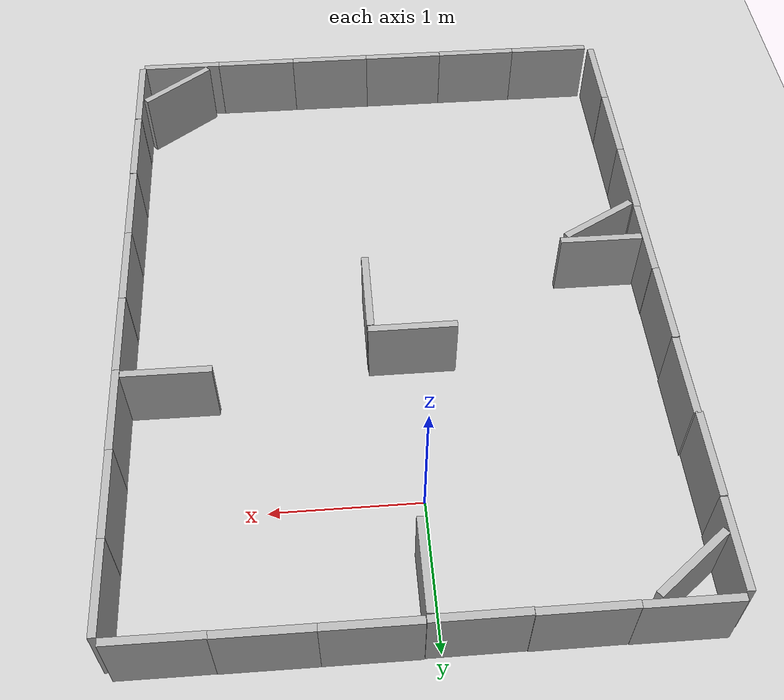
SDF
<?xml version="1.0"?>
<sdf version='1.8'>
  <world name='default'>
    <physics type="ode">
      <real_time_update_rate>1000.0</real_time_update_rate>
      <max_step_size>0.001</max_step_size>
      <real_time_factor>1</real_time_factor>
      <ode>
        <solver>
          <type>quick</type>
          <iters>150</iters>
          <precon_iters>0</precon_iters>
          <sor>1.400000</sor>
          <use_dynamic_moi_rescaling>1</use_dynamic_moi_rescaling>
        </solver>
        <constraints>
          <cfm>0.00001</cfm>
          <erp>0.2</erp>
          <contact_max_correcting_vel>2000.000000</contact_max_correcting_vel>
          <contact_surface_layer>0.01000</contact_surface_layer>
        </constraints>
      </ode>
    </physics>
    <plugin
      filename="gz-sim-physics-system"
      name="gz::sim::systems::Physics">
    </plugin>
    <plugin
      filename="gz-sim-user-commands-system"
      name="gz::sim::systems::UserCommands">
    </plugin>
    <plugin
      filename="gz-sim-scene-broadcaster-system"
      name="gz::sim::systems::SceneBroadcaster">
    </plugin>
    <plugin
      filename="gz-sim-sensors-system"
      name="gz::sim::systems::Sensors">
      <render_engine>ogre2</render_engine>
    </plugin>
    <plugin
      filename="gz-sim-imu-system"
      name="gz::sim::systems::Imu">
    </plugin>
    <plugin
      filename="gz-sim-particle-emitter-system"
      name="gz::sim::systems::ParticleEmitter">
    </plugin>

    <gravity>0 0 -9.8000000000000007</gravity>
    <magnetic_field>5.5644999999999998e-06 2.2875799999999999e-05 -4.2388400000000002e-05</magnetic_field>
    <atmosphere type='adiabatic'/>
    <scene>
      <ambient>0.400000006 0.400000006 0.400000006 1</ambient>
      <background>0.699999988 0.699999988 0.699999988 1</background>
      <shadows>true</shadows>
    </scene>
    <model name='ground_plane'>
      <static>true</static>
      <link name='link'>
        <collision name='collision'>
          <geometry>
            <plane>
              <normal>0 0 1</normal>
              <size>100 100</size>
            </plane>
          </geometry>
          <surface>
            <friction>
              <ode/>
            </friction>
            <bounce/>
            <contact/>
          </surface>
        </collision>
        <visual name='visual'>
          <geometry>
            <plane>
              <normal>0 0 1</normal>
              <size>100 100</size>
            </plane>
          </geometry>
          <material>
            <ambient>0.800000012 0.800000012 0.800000012 1</ambient>
            <diffuse>0.800000012 0.800000012 0.800000012 1</diffuse>
            <specular>0.800000012 0.800000012 0.800000012 1</specular>
          </material>
        </visual>
        <pose>0 0 0 0 0 0</pose>
        <inertial>
          <pose>0 0 0 0 0 0</pose>
          <mass>1</mass>
          <inertia>
            <ixx>1</ixx>
            <ixy>0</ixy>
            <ixz>0</ixz>
            <iyy>1</iyy>
            <iyz>0</iyz>
            <izz>1</izz>
          </inertia>
        </inertial>
        <enable_wind>false</enable_wind>
      </link>
      <pose>0 0 0 0 0 0</pose>
      <self_collide>false</self_collide>
    </model>
    <model name='box'>
      <pose>-1.724210 0.677779 0.26292604207992554 0 0 0</pose>
      <link name='box_link'>
        <inertial>
          <inertia>
            <ixx>0.16666</ixx>
            <ixy>0</ixy>
            <ixz>0</ixz>
            <iyy>0.16666</iyy>
            <iyz>0</iyz>
            <izz>0.16666</izz>
          </inertia>
          <mass>1</mass>
          <pose>0 0 0 0 0 0</pose>
        </inertial>
        <collision name='box_collision'>
          <geometry>
            <box>
              <size>0.050000000000000003 0.55 0.5</size>
            </box>
          </geometry>
          <surface>
            <friction>
              <ode/>
            </friction>
            <bounce/>
            <contact/>
          </surface>
        </collision>
        <visual name='box_visual'>
          <geometry>
            <box>
              <size>0.050000000000000003 0.59999999999999998 0.5</size>
            </box>
          </geometry>
          <material>
            <ambient>0.300000012 0.300000012 0.300000012 1</ambient>
            <diffuse>0.699999988 0.699999988 0.699999988 1</diffuse>
            <specular>1 1 1 1</specular>
          </material>
        </visual>
        <pose>0 0 0 0 0 0</pose>
        <enable_wind>false</enable_wind>
      </link>
      <static>true</static>
      <self_collide>false</self_collide>
    </model>
    <model name='box_1'>
      <pose>-1.730000 0.070000 0.26000000000000001 0 0 0</pose>
      <link name='box_link'>
        <inertial>
          <inertia>
            <ixx>0.16666</ixx>
            <ixy>0</ixy>
            <ixz>0</ixz>
            <iyy>0.16666</iyy>
            <iyz>0</iyz>
            <izz>0.16666</izz>
          </inertia>
          <mass>1</mass>
          <pose>0 0 0 0 0 0</pose>
        </inertial>
        <collision name='box_collision'>
          <geometry>
            <box>
              <size>0.050000000000000003 0.55 0.5</size>
            </box>
          </geometry>
          <surface>
            <friction>
              <ode/>
            </friction>
            <bounce/>
            <contact/>
          </surface>
        </collision>
        <visual name='box_visual'>
          <geometry>
            <box>
              <size>0.050000000000000003 0.59999999999999998 0.5</size>
            </box>
          </geometry>
          <material>
            <ambient>0.300000012 0.300000012 0.300000012 1</ambient>
            <diffuse>0.699999988 0.699999988 0.699999988 1</diffuse>
            <specular>1 1 1 1</specular>
          </material>
        </visual>
        <pose>0 0 0 0 0 0</pose>
        <enable_wind>false</enable_wind>
      </link>
      <static>true</static>
      <self_collide>false</self_collide>
    </model>
    <model name='box_2'>
      <pose>-1.720000 -0.520000 0.26000000000000001 0 0 0</pose>
      <link name='box_link'>
        <inertial>
          <inertia>
            <ixx>0.16666</ixx>
            <ixy>0</ixy>
            <ixz>0</ixz>
            <iyy>0.16666</iyy>
            <iyz>0</iyz>
            <izz>0.16666</izz>
          </inertia>
          <mass>1</mass>
          <pose>0 0 0 0 0 0</pose>
        </inertial>
        <collision name='box_collision'>
          <geometry>
            <box>
              <size>0.050000000000000003 0.55 0.5</size>
            </box>
          </geometry>
          <surface>
            <friction>
              <ode/>
            </friction>
            <bounce/>
            <contact/>
          </surface>
        </collision>
        <visual name='box_visual'>
          <geometry>
            <box>
              <size>0.050000000000000003 0.59999999999999998 0.5</size>
            </box>
          </geometry>
          <material>
            <ambient>0.300000012 0.300000012 0.300000012 1</ambient>
            <diffuse>0.699999988 0.699999988 0.699999988 1</diffuse>
            <specular>1 1 1 1</specular>
          </material>
        </visual>
        <pose>0 0 0 0 0 0</pose>
        <enable_wind>false</enable_wind>
      </link>
      <static>true</static>
      <self_collide>false</self_collide>
    </model>
    <model name='box_3'>
      <pose>-1.722620 -1.113900 0.26708531379699707 0 0 0</pose>
      <link name='box_link'>
        <inertial>
          <inertia>
            <ixx>0.16666</ixx>
            <ixy>0</ixy>
            <ixz>0</ixz>
            <iyy>0.16666</iyy>
            <iyz>0</iyz>
            <izz>0.16666</izz>
          </inertia>
          <mass>1</mass>
          <pose>0 0 0 0 0 0</pose>
        </inertial>
        <collision name='box_collision'>
          <geometry>
            <box>
              <size>0.050000000000000003 0.55 0.5</size>
            </box>
          </geometry>
          <surface>
            <friction>
              <ode/>
            </friction>
            <bounce/>
            <contact/>
          </surface>
        </collision>
        <visual name='box_visual'>
          <geometry>
            <box>
              <size>0.050000000000000003 0.59999999999999998 0.5</size>
            </box>
          </geometry>
          <material>
            <ambient>0.300000012 0.300000012 0.300000012 1</ambient>
            <diffuse>0.699999988 0.699999988 0.699999988 1</diffuse>
            <specular>1 1 1 1</specular>
          </material>
        </visual>
        <pose>0 0 0 0 0 0</pose>
        <enable_wind>false</enable_wind>
      </link>
      <static>true</static>
      <self_collide>false</self_collide>
    </model>
    <model name='box_4'>
      <pose>-1.720580 -1.711580 0.26702764630317688 0 0 0</pose>
      <link name='box_link'>
        <inertial>
          <inertia>
            <ixx>0.16666</ixx>
            <ixy>0</ixy>
            <ixz>0</ixz>
            <iyy>0.16666</iyy>
            <iyz>0</iyz>
            <izz>0.16666</izz>
          </inertia>
          <mass>1</mass>
          <pose>0 0 0 0 0 0</pose>
        </inertial>
        <collision name='box_collision'>
          <geometry>
            <box>
              <size>0.050000000000000003 0.55 0.5</size>
            </box>
          </geometry>
          <surface>
            <friction>
              <ode/>
            </friction>
            <bounce/>
            <contact/>
          </surface>
        </collision>
        <visual name='box_visual'>
          <geometry>
            <box>
              <size>0.050000000000000003 0.59999999999999998 0.5</size>
            </box>
          </geometry>
          <material>
            <ambient>0.300000012 0.300000012 0.300000012 1</ambient>
            <diffuse>0.699999988 0.699999988 0.699999988 1</diffuse>
            <specular>1 1 1 1</specular>
          </material>
        </visual>
        <pose>0 0 0 0 0 0</pose>
        <enable_wind>false</enable_wind>
      </link>
      <static>true</static>
      <self_collide>false</self_collide>
    </model>
    <model name='box_5'>
      <pose>-1.723420 -2.311430 0.26691371202468872 0 0 0</pose>
      <link name='box_link'>
        <inertial>
          <inertia>
            <ixx>0.16666</ixx>
            <ixy>0</ixy>
            <ixz>0</ixz>
            <iyy>0.16666</iyy>
            <iyz>0</iyz>
            <izz>0.16666</izz>
          </inertia>
          <mass>1</mass>
          <pose>0 0 0 0 0 0</pose>
        </inertial>
        <collision name='box_collision'>
          <geometry>
            <box>
              <size>0.050000000000000003 0.55 0.5</size>
            </box>
          </geometry>
          <surface>
            <friction>
              <ode/>
            </friction>
            <bounce/>
            <contact/>
          </surface>
        </collision>
        <visual name='box_visual'>
          <geometry>
            <box>
              <size>0.050000000000000003 0.59999999999999998 0.5</size>
            </box>
          </geometry>
          <material>
            <ambient>0.300000012 0.300000012 0.300000012 1</ambient>
            <diffuse>0.699999988 0.699999988 0.699999988 1</diffuse>
            <specular>1 1 1 1</specular>
          </material>
        </visual>
        <pose>0 0 0 0 0 0</pose>
        <enable_wind>false</enable_wind>
      </link>
      <static>true</static>
      <self_collide>false</self_collide>
    </model>
    <model name='box_6'>
      <pose>-1.723380 -2.910150 0.26712024211883545 0 0 0</pose>
      <link name='box_link'>
        <inertial>
          <inertia>
            <ixx>0.16666</ixx>
            <ixy>0</ixy>
            <ixz>0</ixz>
            <iyy>0.16666</iyy>
            <iyz>0</iyz>
            <izz>0.16666</izz>
          </inertia>
          <mass>1</mass>
          <pose>0 0 0 0 0 0</pose>
        </inertial>
        <collision name='box_collision'>
          <geometry>
            <box>
              <size>0.050000000000000003 0.55 0.5</size>
            </box>
          </geometry>
          <surface>
            <friction>
              <ode/>
            </friction>
            <bounce/>
            <contact/>
          </surface>
        </collision>
        <visual name='box_visual'>
          <geometry>
            <box>
              <size>0.050000000000000003 0.59999999999999998 0.5</size>
            </box>
          </geometry>
          <material>
            <ambient>0.300000012 0.300000012 0.300000012 1</ambient>
            <diffuse>0.699999988 0.699999988 0.699999988 1</diffuse>
            <specular>1 1 1 1</specular>
          </material>
        </visual>
        <pose>0 0 0 0 0 0</pose>
        <enable_wind>false</enable_wind>
      </link>
      <static>true</static>
      <self_collide>false</self_collide>
    </model>
    <model name='box_7'>
      <pose>-1.722150 -3.503610 0.26729947328567505 0 0 0</pose>
      <link name='box_link'>
        <inertial>
          <inertia>
            <ixx>0.16666</ixx>
            <ixy>0</ixy>
            <ixz>0</ixz>
            <iyy>0.16666</iyy>
            <iyz>0</iyz>
            <izz>0.16666</izz>
          </inertia>
          <mass>1</mass>
          <pose>0 0 0 0 0 0</pose>
        </inertial>
        <collision name='box_collision'>
          <geometry>
            <box>
              <size>0.050000000000000003 0.55 0.5</size>
            </box>
          </geometry>
          <surface>
            <friction>
              <ode/>
            </friction>
            <bounce/>
            <contact/>
          </surface>
        </collision>
        <visual name='box_visual'>
          <geometry>
            <box>
              <size>0.050000000000000003 0.59999999999999998 0.5</size>
            </box>
          </geometry>
          <material>
            <ambient>0.300000012 0.300000012 0.300000012 1</ambient>
            <diffuse>0.699999988 0.699999988 0.699999988 1</diffuse>
            <specular>1 1 1 1</specular>
          </material>
        </visual>
        <pose>0 0 0 0 0 0</pose>
        <enable_wind>false</enable_wind>
      </link>
      <static>true</static>
      <self_collide>false</self_collide>
    </model>
    <model name='box_8'>
      <pose>-1.397500 1.006640 0.25750440359115601 0 0 1.5658000872875657</pose>
      <link name='box_link'>
        <inertial>
          <inertia>
            <ixx>0.16666</ixx>
            <ixy>0</ixy>
            <ixz>0</ixz>
            <iyy>0.16666</iyy>
            <iyz>0</iyz>
            <izz>0.16666</izz>
          </inertia>
          <mass>1</mass>
          <pose>0 0 0 0 0 0</pose>
        </inertial>
        <collision name='box_collision'>
          <geometry>
            <box>
              <size>0.050000000000000003 0.55 0.5</size>
            </box>
          </geometry>
          <surface>
            <friction>
              <ode/>
            </friction>
            <bounce/>
            <contact/>
          </surface>
        </collision>
        <visual name='box_visual'>
          <geometry>
            <box>
              <size>0.050000000000000003 0.59999999999999998 0.5</size>
            </box>
          </geometry>
          <material>
            <ambient>0.300000012 0.300000012 0.300000012 1</ambient>
            <diffuse>0.699999988 0.699999988 0.699999988 1</diffuse>
            <specular>1 1 1 1</specular>
          </material>
        </visual>
        <pose>0 0 0 0 0 0</pose>
        <enable_wind>false</enable_wind>
      </link>
      <static>true</static>
      <self_collide>false</self_collide>
    </model>
    <model name='box_8_1'>
      <pose>-0.800898 1.002950 0.26086625456809998 0 0 1.56841005300998</pose>
      <link name='box_link'>
        <inertial>
          <inertia>
            <ixx>0.16666</ixx>
            <ixy>0</ixy>
            <ixz>0</ixz>
            <iyy>0.16666</iyy>
            <iyz>0</iyz>
            <izz>0.16666</izz>
          </inertia>
          <mass>1</mass>
          <pose>0 0 0 0 0 0</pose>
        </inertial>
        <collision name='box_collision'>
          <geometry>
            <box>
              <size>0.050000000000000003 0.55 0.5</size>
            </box>
          </geometry>
          <surface>
            <friction>
              <ode/>
            </friction>
            <bounce/>
            <contact/>
          </surface>
        </collision>
        <visual name='box_visual'>
          <geometry>
            <box>
              <size>0.050000000000000003 0.59999999999999998 0.5</size>
            </box>
          </geometry>
          <material>
            <ambient>0.300000012 0.300000012 0.300000012 1</ambient>
            <diffuse>0.699999988 0.699999988 0.699999988 1</diffuse>
            <specular>1 1 1 1</specular>
          </material>
        </visual>
        <pose>0 0 0 0 0 0</pose>
        <enable_wind>false</enable_wind>
      </link>
      <static>true</static>
      <self_collide>false</self_collide>
    </model>
    <model name='box_8_2'>
      <pose>-0.200025 0.998429 0.2626970112323761 0 0 1.5700000841906609</pose>
      <link name='box_link'>
        <inertial>
          <inertia>
            <ixx>0.16666</ixx>
            <ixy>0</ixy>
            <ixz>0</ixz>
            <iyy>0.16666</iyy>
            <iyz>0</iyz>
            <izz>0.16666</izz>
          </inertia>
          <mass>1</mass>
          <pose>0 0 0 0 0 0</pose>
        </inertial>
        <collision name='box_collision'>
          <geometry>
            <box>
              <size>0.050000000000000003 0.55 0.5</size>
            </box>
          </geometry>
          <surface>
            <friction>
              <ode/>
            </friction>
            <bounce/>
            <contact/>
          </surface>
        </collision>
        <visual name='box_visual'>
          <geometry>
            <box>
              <size>0.050000000000000003 0.59999999999999998 0.5</size>
            </box>
          </geometry>
          <material>
            <ambient>0.300000012 0.300000012 0.300000012 1</ambient>
            <diffuse>0.699999988 0.699999988 0.699999988 1</diffuse>
            <specular>1 1 1 1</specular>
          </material>
        </visual>
        <pose>0 0 0 0 0 0</pose>
        <enable_wind>false</enable_wind>
      </link>
      <static>true</static>
      <self_collide>false</self_collide>
    </model>
    <model name='box_8_3'>
      <pose>0.402227 0.999103 0.25750398635864258 0 0 1.5658000872875657</pose>
      <link name='box_link'>
        <inertial>
          <inertia>
            <ixx>0.16666</ixx>
            <ixy>0</ixy>
            <ixz>0</ixz>
            <iyy>0.16666</iyy>
            <iyz>0</iyz>
            <izz>0.16666</izz>
          </inertia>
          <mass>1</mass>
          <pose>0 0 0 0 0 0</pose>
        </inertial>
        <collision name='box_collision'>
          <geometry>
            <box>
              <size>0.050000000000000003 0.55 0.5</size>
            </box>
          </geometry>
          <surface>
            <friction>
              <ode/>
            </friction>
            <bounce/>
            <contact/>
          </surface>
        </collision>
        <visual name='box_visual'>
          <geometry>
            <box>
              <size>0.050000000000000003 0.59999999999999998 0.5</size>
            </box>
          </geometry>
          <material>
            <ambient>0.300000012 0.300000012 0.300000012 1</ambient>
            <diffuse>0.699999988 0.699999988 0.699999988 1</diffuse>
            <specular>1 1 1 1</specular>
          </material>
        </visual>
        <pose>0 0 0 0 0 0</pose>
        <enable_wind>false</enable_wind>
      </link>
      <static>true</static>
      <self_collide>false</self_collide>
    </model>
    <model name='box_8_4'>
      <pose>1.001963 0.996505 0.25750398635864258 0 0 1.5658000872875657</pose>
      <link name='box_link'>
        <inertial>
          <inertia>
            <ixx>0.16666</ixx>
            <ixy>0</ixy>
            <ixz>0</ixz>
            <iyy>0.16666</iyy>
            <iyz>0</iyz>
            <izz>0.16666</izz>
          </inertia>
          <mass>1</mass>
          <pose>0 0 0 0 0 0</pose>
        </inertial>
        <collision name='box_collision'>
          <geometry>
            <box>
              <size>0.050000000000000003 0.55 0.5</size>
            </box>
          </geometry>
          <surface>
            <friction>
              <ode/>
            </friction>
            <bounce/>
            <contact/>
          </surface>
        </collision>
        <visual name='box_visual'>
          <geometry>
            <box>
              <size>0.050000000000000003 0.59999999999999998 0.5</size>
            </box>
          </geometry>
          <material>
            <ambient>0.300000012 0.300000012 0.300000012 1</ambient>
            <diffuse>0.699999988 0.699999988 0.699999988 1</diffuse>
            <specular>1 1 1 1</specular>
          </material>
        </visual>
        <pose>0 0 0 0 0 0</pose>
        <enable_wind>false</enable_wind>
      </link>
      <static>true</static>
      <self_collide>false</self_collide>
    </model>
    <model name='box_8_5'>
      <pose>1.600076 0.991379 0.25750398635864258 0 0 1.5658000872875657</pose>
      <link name='box_link'>
        <inertial>
          <inertia>
            <ixx>0.16666</ixx>
            <ixy>0</ixy>
            <ixz>0</ixz>
            <iyy>0.16666</iyy>
            <iyz>0</iyz>
            <izz>0.16666</izz>
          </inertia>
          <mass>1</mass>
          <pose>0 0 0 0 0 0</pose>
        </inertial>
        <collision name='box_collision'>
          <geometry>
            <box>
              <size>0.050000000000000003 0.55 0.5</size>
            </box>
          </geometry>
          <surface>
            <friction>
              <ode/>
            </friction>
            <bounce/>
            <contact/>
          </surface>
        </collision>
        <visual name='box_visual'>
          <geometry>
            <box>
              <size>0.050000000000000003 0.59999999999999998 0.5</size>
            </box>
          </geometry>
          <material>
            <ambient>0.300000012 0.300000012 0.300000012 1</ambient>
            <diffuse>0.699999988 0.699999988 0.699999988 1</diffuse>
            <specular>1 1 1 1</specular>
          </material>
        </visual>
        <pose>0 0 0 0 0 0</pose>
        <enable_wind>false</enable_wind>
      </link>
      <static>true</static>
      <self_collide>false</self_collide>
    </model>
    <model name='box_9'>
      <pose>1.926253 0.665529 0.26292601227760315 0 0 0</pose>
      <link name='box_link'>
        <inertial>
          <inertia>
            <ixx>0.16666</ixx>
            <ixy>0</ixy>
            <ixz>0</ixz>
            <iyy>0.16666</iyy>
            <iyz>0</iyz>
            <izz>0.16666</izz>
          </inertia>
          <mass>1</mass>
          <pose>0 0 0 0 0 0</pose>
        </inertial>
        <collision name='box_collision'>
          <geometry>
            <box>
              <size>0.050000000000000003 0.55 0.5</size>
            </box>
          </geometry>
          <surface>
            <friction>
              <ode/>
            </friction>
            <bounce/>
            <contact/>
          </surface>
        </collision>
        <visual name='box_visual'>
          <geometry>
            <box>
              <size>0.050000000000000003 0.59999999999999998 0.5</size>
            </box>
          </geometry>
          <material>
            <ambient>0.300000012 0.300000012 0.300000012 1</ambient>
            <diffuse>0.699999988 0.699999988 0.699999988 1</diffuse>
            <specular>1 1 1 1</specular>
          </material>
        </visual>
        <pose>0 0 0 0 0 0</pose>
        <enable_wind>false</enable_wind>
      </link>
      <static>true</static>
      <self_collide>false</self_collide>
    </model>
    <model name='box_10'>
      <pose>1.925703 0.065196 0.26292601227760315 0 0 0</pose>
      <link name='box_link'>
        <inertial>
          <inertia>
            <ixx>0.16666</ixx>
            <ixy>0</ixy>
            <ixz>0</ixz>
            <iyy>0.16666</iyy>
            <iyz>0</iyz>
            <izz>0.16666</izz>
          </inertia>
          <mass>1</mass>
          <pose>0 0 0 0 0 0</pose>
        </inertial>
        <collision name='box_collision'>
          <geometry>
            <box>
              <size>0.050000000000000003 0.55 0.5</size>
            </box>
          </geometry>
          <surface>
            <friction>
              <ode/>
            </friction>
            <bounce/>
            <contact/>
          </surface>
        </collision>
        <visual name='box_visual'>
          <geometry>
            <box>
              <size>0.050000000000000003 0.59999999999999998 0.5</size>
            </box>
          </geometry>
          <material>
            <ambient>0.300000012 0.300000012 0.300000012 1</ambient>
            <diffuse>0.699999988 0.699999988 0.699999988 1</diffuse>
            <specular>1 1 1 1</specular>
          </material>
        </visual>
        <pose>0 0 0 0 0 0</pose>
        <enable_wind>false</enable_wind>
      </link>
      <static>true</static>
      <self_collide>false</self_collide>
    </model>
    <model name='box_11'>
      <pose>1.927593 -0.535027 0.26292601227760315 0 0 0</pose>
      <link name='box_link'>
        <inertial>
          <inertia>
            <ixx>0.16666</ixx>
            <ixy>0</ixy>
            <ixz>0</ixz>
            <iyy>0.16666</iyy>
            <iyz>0</iyz>
            <izz>0.16666</izz>
          </inertia>
          <mass>1</mass>
          <pose>0 0 0 0 0 0</pose>
        </inertial>
        <collision name='box_collision'>
          <geometry>
            <box>
              <size>0.050000000000000003 0.55 0.5</size>
            </box>
          </geometry>
          <surface>
            <friction>
              <ode/>
            </friction>
            <bounce/>
            <contact/>
          </surface>
        </collision>
        <visual name='box_visual'>
          <geometry>
            <box>
              <size>0.050000000000000003 0.59999999999999998 0.5</size>
            </box>
          </geometry>
          <material>
            <ambient>0.300000012 0.300000012 0.300000012 1</ambient>
            <diffuse>0.699999988 0.699999988 0.699999988 1</diffuse>
            <specular>1 1 1 1</specular>
          </material>
        </visual>
        <pose>0 0 0 0 0 0</pose>
        <enable_wind>false</enable_wind>
      </link>
      <static>true</static>
      <self_collide>false</self_collide>
    </model>
    <model name='box_12'>
      <pose>1.928115 -1.135219 0.26292601227760315 0 0 0</pose>
      <link name='box_link'>
        <inertial>
          <inertia>
            <ixx>0.16666</ixx>
            <ixy>0</ixy>
            <ixz>0</ixz>
            <iyy>0.16666</iyy>
            <iyz>0</iyz>
            <izz>0.16666</izz>
          </inertia>
          <mass>1</mass>
          <pose>0 0 0 0 0 0</pose>
        </inertial>
        <collision name='box_collision'>
          <geometry>
            <box>
              <size>0.050000000000000003 0.55 0.5</size>
            </box>
          </geometry>
          <surface>
            <friction>
              <ode/>
            </friction>
            <bounce/>
            <contact/>
          </surface>
        </collision>
        <visual name='box_visual'>
          <geometry>
            <box>
              <size>0.050000000000000003 0.59999999999999998 0.5</size>
            </box>
          </geometry>
          <material>
            <ambient>0.300000012 0.300000012 0.300000012 1</ambient>
            <diffuse>0.699999988 0.699999988 0.699999988 1</diffuse>
            <specular>1 1 1 1</specular>
          </material>
        </visual>
        <pose>0 0 0 0 0 0</pose>
        <enable_wind>false</enable_wind>
      </link>
      <static>true</static>
      <self_collide>false</self_collide>
    </model>
    <model name='box_13'>
      <pose>1.926795 -1.737173 0.26292601227760315 0 0 0</pose>
      <link name='box_link'>
        <inertial>
          <inertia>
            <ixx>0.16666</ixx>
            <ixy>0</ixy>
            <ixz>0</ixz>
            <iyy>0.16666</iyy>
            <iyz>0</iyz>
            <izz>0.16666</izz>
          </inertia>
          <mass>1</mass>
          <pose>0 0 0 0 0 0</pose>
        </inertial>
        <collision name='box_collision'>
          <geometry>
            <box>
              <size>0.050000000000000003 0.55 0.5</size>
            </box>
          </geometry>
          <surface>
            <friction>
              <ode/>
            </friction>
            <bounce/>
            <contact/>
          </surface>
        </collision>
        <visual name='box_visual'>
          <geometry>
            <box>
              <size>0.050000000000000003 0.59999999999999998 0.5</size>
            </box>
          </geometry>
          <material>
            <ambient>0.300000012 0.300000012 0.300000012 1</ambient>
            <diffuse>0.699999988 0.699999988 0.699999988 1</diffuse>
            <specular>1 1 1 1</specular>
          </material>
        </visual>
        <pose>0 0 0 0 0 0</pose>
        <enable_wind>false</enable_wind>
      </link>
      <static>true</static>
      <self_collide>false</self_collide>
    </model>
    <model name='box_14'>
      <pose>1.926761 -2.336629 0.26292601227760315 0 0 0</pose>
      <link name='box_link'>
        <inertial>
          <inertia>
            <ixx>0.16666</ixx>
            <ixy>0</ixy>
            <ixz>0</ixz>
            <iyy>0.16666</iyy>
            <iyz>0</iyz>
            <izz>0.16666</izz>
          </inertia>
          <mass>1</mass>
          <pose>0 0 0 0 0 0</pose>
        </inertial>
        <collision name='box_collision'>
          <geometry>
            <box>
              <size>0.050000000000000003 0.55 0.5</size>
            </box>
          </geometry>
          <surface>
            <friction>
              <ode/>
            </friction>
            <bounce/>
            <contact/>
          </surface>
        </collision>
        <visual name='box_visual'>
          <geometry>
            <box>
              <size>0.050000000000000003 0.59999999999999998 0.5</size>
            </box>
          </geometry>
          <material>
            <ambient>0.300000012 0.300000012 0.300000012 1</ambient>
            <diffuse>0.699999988 0.699999988 0.699999988 1</diffuse>
            <specular>1 1 1 1</specular>
          </material>
        </visual>
        <pose>0 0 0 0 0 0</pose>
        <enable_wind>false</enable_wind>
      </link>
      <static>true</static>
      <self_collide>false</self_collide>
    </model>
    <model name='box_15'>
      <pose>1.928001 -2.938907 0.26292601227760315 0 0 0</pose>
      <link name='box_link'>
        <inertial>
          <inertia>
            <ixx>0.16666</ixx>
            <ixy>0</ixy>
            <ixz>0</ixz>
            <iyy>0.16666</iyy>
            <iyz>0</iyz>
            <izz>0.16666</izz>
          </inertia>
          <mass>1</mass>
          <pose>0 0 0 0 0 0</pose>
        </inertial>
        <collision name='box_collision'>
          <geometry>
            <box>
              <size>0.050000000000000003 0.55 0.5</size>
            </box>
          </geometry>
          <surface>
            <friction>
              <ode/>
            </friction>
            <bounce/>
            <contact/>
          </surface>
        </collision>
        <visual name='box_visual'>
          <geometry>
            <box>
              <size>0.050000000000000003 0.59999999999999998 0.5</size>
            </box>
          </geometry>
          <material>
            <ambient>0.300000012 0.300000012 0.300000012 1</ambient>
            <diffuse>0.699999988 0.699999988 0.699999988 1</diffuse>
            <specular>1 1 1 1</specular>
          </material>
        </visual>
        <pose>0 0 0 0 0 0</pose>
        <enable_wind>false</enable_wind>
      </link>
      <static>true</static>
      <self_collide>false</self_collide>
    </model>
    <model name='box_16'>
      <pose>1.927476 -3.542195 0.26292601227760315 0 0 0</pose>
      <link name='box_link'>
        <inertial>
          <inertia>
            <ixx>0.16666</ixx>
            <ixy>0</ixy>
            <ixz>0</ixz>
            <iyy>0.16666</iyy>
            <iyz>0</iyz>
            <izz>0.16666</izz>
          </inertia>
          <mass>1</mass>
          <pose>0 0 0 0 0 0</pose>
        </inertial>
        <collision name='box_collision'>
          <geometry>
            <box>
              <size>0.050000000000000003 0.55 0.5</size>
            </box>
          </geometry>
          <surface>
            <friction>
              <ode/>
            </friction>
            <bounce/>
            <contact/>
          </surface>
        </collision>
        <visual name='box_visual'>
          <geometry>
            <box>
              <size>0.050000000000000003 0.59999999999999998 0.5</size>
            </box>
          </geometry>
          <material>
            <ambient>0.300000012 0.300000012 0.300000012 1</ambient>
            <diffuse>0.699999988 0.699999988 0.699999988 1</diffuse>
            <specular>1 1 1 1</specular>
          </material>
        </visual>
        <pose>0 0 0 0 0 0</pose>
        <enable_wind>false</enable_wind>
      </link>
      <static>true</static>
      <self_collide>false</self_collide>
    </model>
    <model name='box_8_5_1'>
      <pose>1.617098 -3.865566 0.25750398635864258 0 0 1.5658000872875657</pose>
      <link name='box_link'>
        <inertial>
          <inertia>
            <ixx>0.16666</ixx>
            <ixy>0</ixy>
            <ixz>0</ixz>
            <iyy>0.16666</iyy>
            <iyz>0</iyz>
            <izz>0.16666</izz>
          </inertia>
          <mass>1</mass>
          <pose>0 0 0 0 0 0</pose>
        </inertial>
        <collision name='box_collision'>
          <geometry>
            <box>
              <size>0.050000000000000003 0.55 0.5</size>
            </box>
          </geometry>
          <surface>
            <friction>
              <ode/>
            </friction>
            <bounce/>
            <contact/>
          </surface>
        </collision>
        <visual name='box_visual'>
          <geometry>
            <box>
              <size>0.050000000000000003 0.59999999999999998 0.5</size>
            </box>
          </geometry>
          <material>
            <ambient>0.300000012 0.300000012 0.300000012 1</ambient>
            <diffuse>0.699999988 0.699999988 0.699999988 1</diffuse>
            <specular>1 1 1 1</specular>
          </material>
        </visual>
        <pose>0 0 0 0 0 0</pose>
        <enable_wind>false</enable_wind>
      </link>
      <static>true</static>
      <self_collide>false</self_collide>
    </model>
    <model name='box_8_5_2'>
      <pose>1.018338 -3.862349 0.25750398635864258 0 0 1.5658000872875657</pose>
      <link name='box_link'>
        <inertial>
          <inertia>
            <ixx>0.16666</ixx>
            <ixy>0</ixy>
            <ixz>0</ixz>
            <iyy>0.16666</iyy>
            <iyz>0</iyz>
            <izz>0.16666</izz>
          </inertia>
          <mass>1</mass>
          <pose>0 0 0 0 0 0</pose>
        </inertial>
        <collision name='box_collision'>
          <geometry>
            <box>
              <size>0.050000000000000003 0.55 0.5</size>
            </box>
          </geometry>
          <surface>
            <friction>
              <ode/>
            </friction>
            <bounce/>
            <contact/>
          </surface>
        </collision>
        <visual name='box_visual'>
          <geometry>
            <box>
              <size>0.050000000000000003 0.59999999999999998 0.5</size>
            </box>
          </geometry>
          <material>
            <ambient>0.300000012 0.300000012 0.300000012 1</ambient>
            <diffuse>0.699999988 0.699999988 0.699999988 1</diffuse>
            <specular>1 1 1 1</specular>
          </material>
        </visual>
        <pose>0 0 0 0 0 0</pose>
        <enable_wind>false</enable_wind>
      </link>
      <static>true</static>
      <self_collide>false</self_collide>
    </model>
    <model name='box_8_5_3'>
      <pose>0.419076 -3.860021 0.25750398635864258 0 0 1.5658000872875657</pose>
      <link name='box_link'>
        <inertial>
          <inertia>
            <ixx>0.16666</ixx>
            <ixy>0</ixy>
            <ixz>0</ixz>
            <iyy>0.16666</iyy>
            <iyz>0</iyz>
            <izz>0.16666</izz>
          </inertia>
          <mass>1</mass>
          <pose>0 0 0 0 0 0</pose>
        </inertial>
        <collision name='box_collision'>
          <geometry>
            <box>
              <size>0.050000000000000003 0.55 0.5</size>
            </box>
          </geometry>
          <surface>
            <friction>
              <ode/>
            </friction>
            <bounce/>
            <contact/>
          </surface>
        </collision>
        <visual name='box_visual'>
          <geometry>
            <box>
              <size>0.050000000000000003 0.59999999999999998 0.5</size>
            </box>
          </geometry>
          <material>
            <ambient>0.300000012 0.300000012 0.300000012 1</ambient>
            <diffuse>0.699999988 0.699999988 0.699999988 1</diffuse>
            <specular>1 1 1 1</specular>
          </material>
        </visual>
        <pose>0 0 0 0 0 0</pose>
        <enable_wind>false</enable_wind>
      </link>
      <static>true</static>
      <self_collide>false</self_collide>
    </model>
    <model name='box_8_5_4'>
      <pose>-0.179832 -3.856848 0.25750398635864258 0 0 1.5658000872875657</pose>
      <link name='box_link'>
        <inertial>
          <inertia>
            <ixx>0.16666</ixx>
            <ixy>0</ixy>
            <ixz>0</ixz>
            <iyy>0.16666</iyy>
            <iyz>0</iyz>
            <izz>0.16666</izz>
          </inertia>
          <mass>1</mass>
          <pose>0 0 0 0 0 0</pose>
        </inertial>
        <collision name='box_collision'>
          <geometry>
            <box>
              <size>0.050000000000000003 0.55 0.5</size>
            </box>
          </geometry>
          <surface>
            <friction>
              <ode/>
            </friction>
            <bounce/>
            <contact/>
          </surface>
        </collision>
        <visual name='box_visual'>
          <geometry>
            <box>
              <size>0.050000000000000003 0.59999999999999998 0.5</size>
            </box>
          </geometry>
          <material>
            <ambient>0.300000012 0.300000012 0.300000012 1</ambient>
            <diffuse>0.699999988 0.699999988 0.699999988 1</diffuse>
            <specular>1 1 1 1</specular>
          </material>
        </visual>
        <pose>0 0 0 0 0 0</pose>
        <enable_wind>false</enable_wind>
      </link>
      <static>true</static>
      <self_collide>false</self_collide>
    </model>
    <model name='box_8_5_5'>
      <pose>-0.780121 -3.853889 0.25750398635864258 0 0 1.5658000872875657</pose>
      <link name='box_link'>
        <inertial>
          <inertia>
            <ixx>0.16666</ixx>
            <ixy>0</ixy>
            <ixz>0</ixz>
            <iyy>0.16666</iyy>
            <iyz>0</iyz>
            <izz>0.16666</izz>
          </inertia>
          <mass>1</mass>
          <pose>0 0 0 0 0 0</pose>
        </inertial>
        <collision name='box_collision'>
          <geometry>
            <box>
              <size>0.050000000000000003 0.55 0.5</size>
            </box>
          </geometry>
          <surface>
            <friction>
              <ode/>
            </friction>
            <bounce/>
            <contact/>
          </surface>
        </collision>
        <visual name='box_visual'>
          <geometry>
            <box>
              <size>0.050000000000000003 0.59999999999999998 0.5</size>
            </box>
          </geometry>
          <material>
            <ambient>0.300000012 0.300000012 0.300000012 1</ambient>
            <diffuse>0.699999988 0.699999988 0.699999988 1</diffuse>
            <specular>1 1 1 1</specular>
          </material>
        </visual>
        <pose>0 0 0 0 0 0</pose>
        <enable_wind>false</enable_wind>
      </link>
      <static>true</static>
      <self_collide>false</self_collide>
    </model>
    <model name='box_8_5_6'>
      <pose>-1.379843 -3.849801 0.25750398635864258 0 0 1.5658000872875657</pose>
      <link name='box_link'>
        <inertial>
          <inertia>
            <ixx>0.16666</ixx>
            <ixy>0</ixy>
            <ixz>0</ixz>
            <iyy>0.16666</iyy>
            <iyz>0</iyz>
            <izz>0.16666</izz>
          </inertia>
          <mass>1</mass>
          <pose>0 0 0 0 0 0</pose>
        </inertial>
        <collision name='box_collision'>
          <geometry>
            <box>
              <size>0.050000000000000003 0.55 0.5</size>
            </box>
          </geometry>
          <surface>
            <friction>
              <ode/>
            </friction>
            <bounce/>
            <contact/>
          </surface>
        </collision>
        <visual name='box_visual'>
          <geometry>
            <box>
              <size>0.050000000000000003 0.59999999999999998 0.5</size>
            </box>
          </geometry>
          <material>
            <ambient>0.300000012 0.300000012 0.300000012 1</ambient>
            <diffuse>0.699999988 0.699999988 0.699999988 1</diffuse>
            <specular>1 1 1 1</specular>
          </material>
        </visual>
        <pose>0 0 0 0 0 0</pose>
        <enable_wind>false</enable_wind>
      </link>
      <static>true</static>
      <self_collide>false</self_collide>
    </model>
    <model name='box_8_5_7'>
      <pose>-1.417992 -1.729548 0.25750398635864258 0 0 1.5658000872875657</pose>
      <link name='box_link'>
        <inertial>
          <inertia>
            <ixx>0.16666</ixx>
            <ixy>0</ixy>
            <ixz>0</ixz>
            <iyy>0.16666</iyy>
            <iyz>0</iyz>
            <izz>0.16666</izz>
          </inertia>
          <mass>1</mass>
          <pose>0 0 0 0 0 0</pose>
        </inertial>
        <collision name='box_collision'>
          <geometry>
            <box>
              <size>0.050000000000000003 0.55 0.5</size>
            </box>
          </geometry>
          <surface>
            <friction>
              <ode/>
            </friction>
            <bounce/>
            <contact/>
          </surface>
        </collision>
        <visual name='box_visual'>
          <geometry>
            <box>
              <size>0.050000000000000003 0.59999999999999998 0.5</size>
            </box>
          </geometry>
          <material>
            <ambient>0.300000012 0.300000012 0.300000012 1</ambient>
            <diffuse>0.699999988 0.699999988 0.699999988 1</diffuse>
            <specular>1 1 1 1</specular>
          </material>
        </visual>
        <pose>0 0 0 0 0 0</pose>
        <enable_wind>false</enable_wind>
      </link>
      <static>true</static>
      <self_collide>false</self_collide>
    </model>
    <model name='box_8_5_9'>
      <pose>1.610688 -0.803015 0.25750398635864258 0 0 1.5658000872875657</pose>
      <link name='box_link'>
        <inertial>
          <inertia>
            <ixx>0.16666</ixx>
            <ixy>0</ixy>
            <ixz>0</ixz>
            <iyy>0.16666</iyy>
            <iyz>0</iyz>
            <izz>0.16666</izz>
          </inertia>
          <mass>1</mass>
          <pose>0 0 0 0 0 0</pose>
        </inertial>
        <collision name='box_collision'>
          <geometry>
            <box>
              <size>0.050000000000000003 0.55 0.5</size>
            </box>
          </geometry>
          <surface>
            <friction>
              <ode/>
            </friction>
            <bounce/>
            <contact/>
          </surface>
        </collision>
        <visual name='box_visual'>
          <geometry>
            <box>
              <size>0.050000000000000003 0.59999999999999998 0.5</size>
            </box>
          </geometry>
          <material>
            <ambient>0.300000012 0.300000012 0.300000012 1</ambient>
            <diffuse>0.699999988 0.699999988 0.699999988 1</diffuse>
            <specular>1 1 1 1</specular>
          </material>
        </visual>
        <pose>0 0 0 0 0 0</pose>
        <enable_wind>false</enable_wind>
      </link>
      <static>true</static>
      <self_collide>false</self_collide>
    </model>
    <model name='box_1_1'>
      <pose>0.074024 0.668904 0.26661500334739685 0 0 0</pose>
      <link name='box_link'>
        <inertial>
          <inertia>
            <ixx>0.16666</ixx>
            <ixy>0</ixy>
            <ixz>0</ixz>
            <iyy>0.16666</iyy>
            <iyz>0</iyz>
            <izz>0.16666</izz>
          </inertia>
          <mass>1</mass>
          <pose>0 0 0 0 0 0</pose>
        </inertial>
        <collision name='box_collision'>
          <geometry>
            <box>
              <size>0.050000000000000003 0.55 0.5</size>
            </box>
          </geometry>
          <surface>
            <friction>
              <ode/>
            </friction>
            <bounce/>
            <contact/>
          </surface>
        </collision>
        <visual name='box_visual'>
          <geometry>
            <box>
              <size>0.050000000000000003 0.59999999999999998 0.5</size>
            </box>
          </geometry>
          <material>
            <ambient>0.300000012 0.300000012 0.300000012 1</ambient>
            <diffuse>0.699999988 0.699999988 0.699999988 1</diffuse>
            <specular>1 1 1 1</specular>
          </material>
        </visual>
        <pose>0 0 0 0 0 0</pose>
        <enable_wind>false</enable_wind>
      </link>
      <static>true</static>
      <self_collide>false</self_collide>
    </model>
    <model name='box_1_2_2'>
      <pose>-1.446301 0.778091 0.26661500334739685 0 0 -0.9211320022812256</pose>
      <link name='box_link'>
        <inertial>
          <inertia>
            <ixx>0.16666</ixx>
            <ixy>0</ixy>
            <ixz>0</ixz>
            <iyy>0.16666</iyy>
            <iyz>0</iyz>
            <izz>0.16666</izz>
          </inertia>
          <mass>1</mass>
          <pose>0 0 0 0 0 0</pose>
        </inertial>
        <collision name='box_collision'>
          <geometry>
            <box>
              <size>0.050000000000000003 0.55 0.5</size>
            </box>
          </geometry>
          <surface>
            <friction>
              <ode/>
            </friction>
            <bounce/>
            <contact/>
          </surface>
        </collision>
        <visual name='box_visual'>
          <geometry>
            <box>
              <size>0.050000000000000003 0.59999999999999998 0.5</size>
            </box>
          </geometry>
          <material>
            <ambient>0.300000012 0.300000012 0.300000012 1</ambient>
            <diffuse>0.699999988 0.699999988 0.699999988 1</diffuse>
            <specular>1 1 1 1</specular>
          </material>
        </visual>
        <pose>0 0 0 0 0 0</pose>
        <enable_wind>false</enable_wind>
      </link>
      <static>true</static>
      <self_collide>false</self_collide>
    </model>
    <model name='box_1_2_3'>
      <pose>1.642609 -3.623604 0.26661500334739685 0 0 -0.9211320022812256</pose>
      <link name='box_link'>
        <inertial>
          <inertia>
            <ixx>0.16666</ixx>
            <ixy>0</ixy>
            <ixz>0</ixz>
            <iyy>0.16666</iyy>
            <iyz>0</iyz>
            <izz>0.16666</izz>
          </inertia>
          <mass>1</mass>
          <pose>0 0 0 0 0 0</pose>
        </inertial>
        <collision name='box_collision'>
          <geometry>
            <box>
              <size>0.050000000000000003 0.55 0.5</size>
            </box>
          </geometry>
          <surface>
            <friction>
              <ode/>
            </friction>
            <bounce/>
            <contact/>
          </surface>
        </collision>
        <visual name='box_visual'>
          <geometry>
            <box>
              <size>0.050000000000000003 0.59999999999999998 0.5</size>
            </box>
          </geometry>
          <material>
            <ambient>0.300000012 0.300000012 0.300000012 1</ambient>
            <diffuse>0.699999988 0.699999988 0.699999988 1</diffuse>
            <specular>1 1 1 1</specular>
          </material>
        </visual>
        <pose>0 0 0 0 0 0</pose>
        <enable_wind>false</enable_wind>
      </link>
      <static>true</static>
      <self_collide>false</self_collide>
    </model>
    <model name='box_8_5_8_3'>
      <pose>-1.426333 -1.918113 0.25750398635864258 0 0 2.0823900577787207</pose>
      <link name='box_link'>
        <inertial>
          <inertia>
            <ixx>0.16666</ixx>
            <ixy>0</ixy>
            <ixz>0</ixz>
            <iyy>0.16666</iyy>
            <iyz>0</iyz>
            <izz>0.16666</izz>
          </inertia>
          <mass>1</mass>
          <pose>0 0 0 0 0 0</pose>
        </inertial>
        <collision name='box_collision'>
          <geometry>
            <box>
              <size>0.050000000000000003 0.55 0.5</size>
            </box>
          </geometry>
          <surface>
            <friction>
              <ode/>
            </friction>
            <bounce/>
            <contact/>
          </surface>
        </collision>
        <visual name='box_visual'>
          <geometry>
            <box>
              <size>0.050000000000000003 0.59999999999999998 0.5</size>
            </box>
          </geometry>
          <material>
            <ambient>0.300000012 0.300000012 0.300000012 1</ambient>
            <diffuse>0.699999988 0.699999988 0.699999988 1</diffuse>
            <specular>1 1 1 1</specular>
          </material>
        </visual>
        <pose>0 0 0 0 0 0</pose>
        <enable_wind>false</enable_wind>
      </link>
      <static>true</static>
      <self_collide>false</self_collide>
    </model>
    <model name='box_1_1_1'>
      <pose>0.271095 -1.369630 0.26661500334739685 0 0 0</pose>
      <link name='box_link'>
        <inertial>
          <inertia>
            <ixx>0.16666</ixx>
            <ixy>0</ixy>
            <ixz>0</ixz>
            <iyy>0.16666</iyy>
            <iyz>0</iyz>
            <izz>0.16666</izz>
          </inertia>
          <mass>1</mass>
          <pose>0 0 0 0 0 0</pose>
        </inertial>
        <collision name='box_collision'>
          <geometry>
            <box>
              <size>0.050000000000000003 0.55 0.5</size>
            </box>
          </geometry>
          <surface>
            <friction>
              <ode/>
            </friction>
            <bounce/>
            <contact/>
          </surface>
        </collision>
        <visual name='box_visual'>
          <geometry>
            <box>
              <size>0.050000000000000003 0.59999999999999998 0.5</size>
            </box>
          </geometry>
          <material>
            <ambient>0.300000012 0.300000012 0.300000012 1</ambient>
            <diffuse>0.699999988 0.699999988 0.699999988 1</diffuse>
            <specular>1 1 1 1</specular>
          </material>
        </visual>
        <pose>0 0 0 0 0 0</pose>
        <enable_wind>false</enable_wind>
      </link>
      <static>true</static>
      <self_collide>false</self_collide>
    </model>
    <model name='box_8_1_1'>
      <pose>-0.008517 -1.044216 0.26086598634719849 0 0 1.56841005300998</pose>
      <link name='box_link'>
        <inertial>
          <inertia>
            <ixx>0.16666</ixx>
            <ixy>0</ixy>
            <ixz>0</ixz>
            <iyy>0.16666</iyy>
            <iyz>0</iyz>
            <izz>0.16666</izz>
          </inertia>
          <mass>1</mass>
          <pose>0 0 0 0 0 0</pose>
        </inertial>
        <collision name='box_collision'>
          <geometry>
            <box>
              <size>0.050000000000000003 0.55 0.5</size>
            </box>
          </geometry>
          <surface>
            <friction>
              <ode/>
            </friction>
            <bounce/>
            <contact/>
          </surface>
        </collision>
        <visual name='box_visual'>
          <geometry>
            <box>
              <size>0.050000000000000003 0.59999999999999998 0.5</size>
            </box>
          </geometry>
          <material>
            <ambient>0.300000012 0.300000012 0.300000012 1</ambient>
            <diffuse>0.699999988 0.699999988 0.699999988 1</diffuse>
            <specular>1 1 1 1</specular>
          </material>
        </visual>
        <pose>0 0 0 0 0 0</pose>
        <enable_wind>false</enable_wind>
      </link>
      <static>true</static>
      <self_collide>false</self_collide>
    </model>
    <light name='sun' type='directional'>
      <pose>0 0 10 0 0 0</pose>
      <cast_shadows>true</cast_shadows>
      <intensity>1</intensity>
      <direction>-0.5 0.10000000000000001 -0.90000000000000002</direction>
      <diffuse>0.800000012 0.800000012 0.800000012 1</diffuse>
      <specular>0.200000003 0.200000003 0.200000003 1</specular>
      <attenuation>
        <range>1000</range>
        <linear>0.01</linear>
        <constant>0.90000000000000002</constant>
        <quadratic>0.001</quadratic>
      </attenuation>
      <spot>
        <inner_angle>0</inner_angle>
        <outer_angle>0</outer_angle>
        <falloff>0</falloff>
      </spot>
    </light>
  </world>
</sdf>
